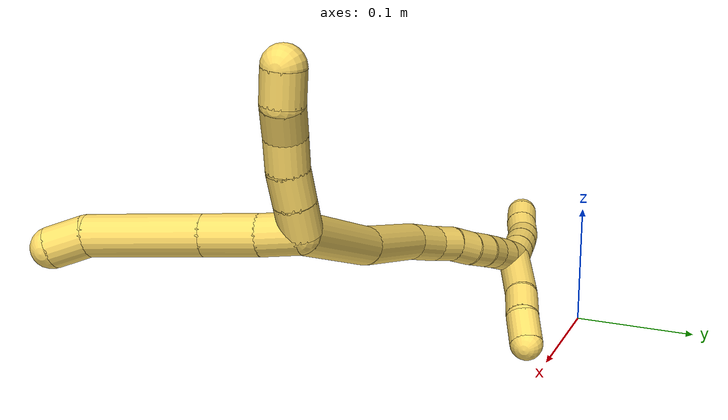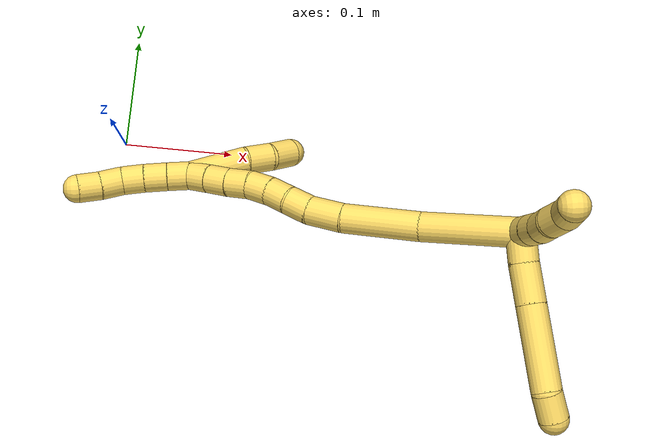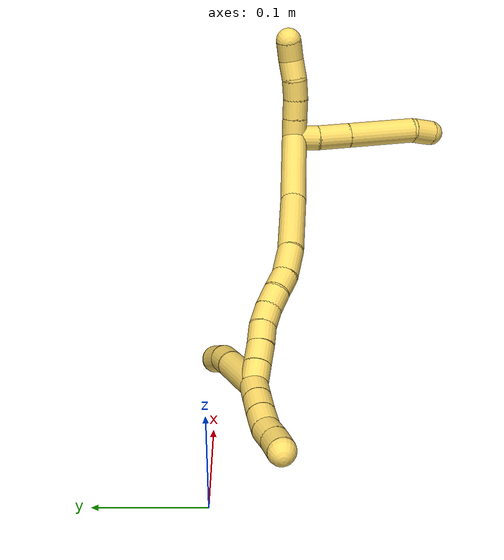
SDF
<sdf version="1.7">
 <world name="default">
  <model name="5">
   <static>0</static>
   <link name="5">
    <collision name="collision-cylinder-e_1_2_8">
     <pose>-0.001555 0.01212 0.000646 -1.51754 -0.127437 0.120842</pose>
     <geometry><cylinder><radius>0.0125</radius><length>0.024472</length></cylinder></geometry>
     <surface>
      <friction><ode><mu>1.16</mu><mu2>1.16</mu2><slip1>0</slip1><slip2>0</slip2></ode></friction>
      <contact><ode><kp>1e+06</kp><kd>1</kd><max_vel>0</max_vel><min_depth>0.001</min_depth></ode></contact>
     </surface>
    </collision>
    <visual name="visual-cylinder-e_1_2_8">
     <pose>-0.001555 0.01212 0.000646 -1.51754 -0.127437 0.120842</pose>
     <geometry><cylinder><radius>0.0125</radius><length>0.024472</length></cylinder></geometry>
     <material><ambient>1 0.858824 0.4 1</ambient></material>
    </visual>
    <collision name="collision-cylinder-e_2_8_9">
     <pose>-0.004101 0.04066 0.003112 -1.4604 -0.059895 0.053626</pose>
     <geometry><cylinder><radius>0.0125</radius><length>0.033102</length></cylinder></geometry>
     <surface>
      <friction><ode><mu>1.16</mu><mu2>1.16</mu2><slip1>0</slip1><slip2>0</slip2></ode></friction>
      <contact><ode><kp>1e+06</kp><kd>1</kd><max_vel>0</max_vel><min_depth>0.001</min_depth></ode></contact>
     </surface>
    </collision>
    <visual name="visual-cylinder-e_2_8_9">
     <pose>-0.004101 0.04066 0.003112 -1.4604 -0.059895 0.053626</pose>
     <geometry><cylinder><radius>0.0125</radius><length>0.033102</length></cylinder></geometry>
     <material><ambient>1 0.858824 0.4 1</ambient></material>
    </visual>
    <collision name="collision-cylinder-e_3_9_10">
     <pose>-0.007196 0.091554 0.008767 -1.46003 -0.060598 0.054235</pose>
     <geometry><cylinder><radius>0.0125</radius><length>0.0695</length></cylinder></geometry>
     <surface>
      <friction><ode><mu>1.16</mu><mu2>1.16</mu2><slip1>0</slip1><slip2>0</slip2></ode></friction>
      <contact><ode><kp>1e+06</kp><kd>1</kd><max_vel>0</max_vel><min_depth>0.001</min_depth></ode></contact>
     </surface>
    </collision>
    <visual name="visual-cylinder-e_3_9_10">
     <pose>-0.007196 0.091554 0.008767 -1.46003 -0.060598 0.054235</pose>
     <geometry><cylinder><radius>0.0125</radius><length>0.0695</length></cylinder></geometry>
     <material><ambient>1 0.858824 0.4 1</ambient></material>
    </visual>
    <collision name="collision-cylinder-e_4_10_6">
     <pose>-0.013057 0.136516 0.015301 -1.31883 -0.333867 0.259764</pose>
     <geometry><cylinder><radius>0.0125</radius><length>0.022926</length></cylinder></geometry>
     <surface>
      <friction><ode><mu>1.16</mu><mu2>1.16</mu2><slip1>0</slip1><slip2>0</slip2></ode></friction>
      <contact><ode><kp>1e+06</kp><kd>1</kd><max_vel>0</max_vel><min_depth>0.001</min_depth></ode></contact>
     </surface>
    </collision>
    <visual name="visual-cylinder-e_4_10_6">
     <pose>-0.013057 0.136516 0.015301 -1.31883 -0.333867 0.259764</pose>
     <geometry><cylinder><radius>0.0125</radius><length>0.022926</length></cylinder></geometry>
     <material><ambient>1 0.858824 0.4 1</ambient></material>
    </visual>
    <collision name="collision-cylinder-e_1_2_11">
     <pose>0.009696 0.000784 0.002317 -0.326402 1.32367 -0.255173</pose>
     <geometry><cylinder><radius>0.0125</radius><length>0.02</length></cylinder></geometry>
     <surface>
      <friction><ode><mu>1.16</mu><mu2>1.16</mu2><slip1>0</slip1><slip2>0</slip2></ode></friction>
      <contact><ode><kp>1e+06</kp><kd>1</kd><max_vel>0</max_vel><min_depth>0.001</min_depth></ode></contact>
     </surface>
    </collision>
    <visual name="visual-cylinder-e_1_2_11">
     <pose>0.009696 0.000784 0.002317 -0.326402 1.32367 -0.255173</pose>
     <geometry><cylinder><radius>0.0125</radius><length>0.02</length></cylinder></geometry>
     <material><ambient>1 0.858824 0.4 1</ambient></material>
    </visual>
    <collision name="collision-cylinder-e_2_11_12">
     <pose>0.029147 0.002496 0.006629 -0.435159 1.34902 -0.349944</pose>
     <geometry><cylinder><radius>0.0125</radius><length>0.02</length></cylinder></geometry>
     <surface>
      <friction><ode><mu>1.16</mu><mu2>1.16</mu2><slip1>0</slip1><slip2>0</slip2></ode></friction>
      <contact><ode><kp>1e+06</kp><kd>1</kd><max_vel>0</max_vel><min_depth>0.001</min_depth></ode></contact>
     </surface>
    </collision>
    <visual name="visual-cylinder-e_2_11_12">
     <pose>0.029147 0.002496 0.006629 -0.435159 1.34902 -0.349944</pose>
     <geometry><cylinder><radius>0.0125</radius><length>0.02</length></cylinder></geometry>
     <material><ambient>1 0.858824 0.4 1</ambient></material>
    </visual>
    <collision name="collision-cylinder-e_3_12_13">
     <pose>0.048803 0.00322 0.010016 0.144836 1.42959 0.125757</pose>
     <geometry><cylinder><radius>0.0125</radius><length>0.02</length></cylinder></geometry>
     <surface>
      <friction><ode><mu>1.16</mu><mu2>1.16</mu2><slip1>0</slip1><slip2>0</slip2></ode></friction>
      <contact><ode><kp>1e+06</kp><kd>1</kd><max_vel>0</max_vel><min_depth>0.001</min_depth></ode></contact>
     </surface>
    </collision>
    <visual name="visual-cylinder-e_3_12_13">
     <pose>0.048803 0.00322 0.010016 0.144836 1.42959 0.125757</pose>
     <geometry><cylinder><radius>0.0125</radius><length>0.02</length></cylinder></geometry>
     <material><ambient>1 0.858824 0.4 1</ambient></material>
    </visual>
    <collision name="collision-cylinder-e_4_13_14">
     <pose>0.067915 0.002003 0.015166 0.263641 1.17103 0.175383</pose>
     <geometry><cylinder><radius>0.0125</radius><length>0.02</length></cylinder></geometry>
     <surface>
      <friction><ode><mu>1.16</mu><mu2>1.16</mu2><slip1>0</slip1><slip2>0</slip2></ode></friction>
      <contact><ode><kp>1e+06</kp><kd>1</kd><max_vel>0</max_vel><min_depth>0.001</min_depth></ode></contact>
     </surface>
    </collision>
    <visual name="visual-cylinder-e_4_13_14">
     <pose>0.067915 0.002003 0.015166 0.263641 1.17103 0.175383</pose>
     <geometry><cylinder><radius>0.0125</radius><length>0.02</length></cylinder></geometry>
     <material><ambient>1 0.858824 0.4 1</ambient></material>
    </visual>
    <collision name="collision-cylinder-e_5_14_5">
     <pose>0.087073 8.2e-05 0.019411 1.07723 1.4677 0.98859</pose>
     <geometry><cylinder><radius>0.0125</radius><length>0.02</length></cylinder></geometry>
     <surface>
      <friction><ode><mu>1.16</mu><mu2>1.16</mu2><slip1>0</slip1><slip2>0</slip2></ode></friction>
      <contact><ode><kp>1e+06</kp><kd>1</kd><max_vel>0</max_vel><min_depth>0.001</min_depth></ode></contact>
     </surface>
    </collision>
    <visual name="visual-cylinder-e_5_14_5">
     <pose>0.087073 8.2e-05 0.019411 1.07723 1.4677 0.98859</pose>
     <geometry><cylinder><radius>0.0125</radius><length>0.02</length></cylinder></geometry>
     <material><ambient>1 0.858824 0.4 1</ambient></material>
    </visual>
    <collision name="collision-cylinder-e_1_2_15">
     <pose>-0.016275 -0.006845 -0.037359 2.96039 -0.404845 -2.30812</pose>
     <geometry><cylinder><radius>0.0125</radius><length>0.082643</length></cylinder></geometry>
     <surface>
      <friction><ode><mu>1.16</mu><mu2>1.16</mu2><slip1>0</slip1><slip2>0</slip2></ode></friction>
      <contact><ode><kp>1e+06</kp><kd>1</kd><max_vel>0</max_vel><min_depth>0.001</min_depth></ode></contact>
     </surface>
    </collision>
    <visual name="visual-cylinder-e_1_2_15">
     <pose>-0.016275 -0.006845 -0.037359 2.96039 -0.404845 -2.30812</pose>
     <geometry><cylinder><radius>0.0125</radius><length>0.082643</length></cylinder></geometry>
     <material><ambient>1 0.858824 0.4 1</ambient></material>
    </visual>
    <collision name="collision-cylinder-e_2_15_16">
     <pose>-0.041424 -0.020183 -0.106017 2.93702 -0.270771 -1.85009</pose>
     <geometry><cylinder><radius>0.0125</radius><length>0.066348</length></cylinder></geometry>
     <surface>
      <friction><ode><mu>1.16</mu><mu2>1.16</mu2><slip1>0</slip1><slip2>0</slip2></ode></friction>
      <contact><ode><kp>1e+06</kp><kd>1</kd><max_vel>0</max_vel><min_depth>0.001</min_depth></ode></contact>
     </surface>
    </collision>
    <visual name="visual-cylinder-e_2_15_16">
     <pose>-0.041424 -0.020183 -0.106017 2.93702 -0.270771 -1.85009</pose>
     <geometry><cylinder><radius>0.0125</radius><length>0.066348</length></cylinder></geometry>
     <material><ambient>1 0.858824 0.4 1</ambient></material>
    </visual>
    <collision name="collision-cylinder-e_3_16_17">
     <pose>-0.05528 -0.031587 -0.150836 2.79321 -0.333453 -1.52614</pose>
     <geometry><cylinder><radius>0.0125</radius><length>0.030446</length></cylinder></geometry>
     <surface>
      <friction><ode><mu>1.16</mu><mu2>1.16</mu2><slip1>0</slip1><slip2>0</slip2></ode></friction>
      <contact><ode><kp>1e+06</kp><kd>1</kd><max_vel>0</max_vel><min_depth>0.001</min_depth></ode></contact>
     </surface>
    </collision>
    <visual name="visual-cylinder-e_3_16_17">
     <pose>-0.05528 -0.031587 -0.150836 2.79321 -0.333453 -1.52614</pose>
     <geometry><cylinder><radius>0.0125</radius><length>0.030446</length></cylinder></geometry>
     <material><ambient>1 0.858824 0.4 1</ambient></material>
    </visual>
    <collision name="collision-cylinder-e_4_17_18">
     <pose>-0.062834 -0.041653 -0.172848 2.59604 -0.25332 -0.854341</pose>
     <geometry><cylinder><radius>0.0125</radius><length>0.020524</length></cylinder></geometry>
     <surface>
      <friction><ode><mu>1.16</mu><mu2>1.16</mu2><slip1>0</slip1><slip2>0</slip2></ode></friction>
      <contact><ode><kp>1e+06</kp><kd>1</kd><max_vel>0</max_vel><min_depth>0.001</min_depth></ode></contact>
     </surface>
    </collision>
    <visual name="visual-cylinder-e_4_17_18">
     <pose>-0.062834 -0.041653 -0.172848 2.59604 -0.25332 -0.854341</pose>
     <geometry><cylinder><radius>0.0125</radius><length>0.020524</length></cylinder></geometry>
     <material><ambient>1 0.858824 0.4 1</ambient></material>
    </visual>
    <collision name="collision-cylinder-e_5_18_19">
     <pose>-0.069338 -0.051884 -0.189021 2.55753 -0.403593 -1.19505</pose>
     <geometry><cylinder><radius>0.0125</radius><length>0.020023</length></cylinder></geometry>
     <surface>
      <friction><ode><mu>1.16</mu><mu2>1.16</mu2><slip1>0</slip1><slip2>0</slip2></ode></friction>
      <contact><ode><kp>1e+06</kp><kd>1</kd><max_vel>0</max_vel><min_depth>0.001</min_depth></ode></contact>
     </surface>
    </collision>
    <visual name="visual-cylinder-e_5_18_19">
     <pose>-0.069338 -0.051884 -0.189021 2.55753 -0.403593 -1.19505</pose>
     <geometry><cylinder><radius>0.0125</radius><length>0.020023</length></cylinder></geometry>
     <material><ambient>1 0.858824 0.4 1</ambient></material>
    </visual>
    <collision name="collision-cylinder-e_6_19_20">
     <pose>-0.076763 -0.060872 -0.205226 2.71146 -0.356588 -1.37955</pose>
     <geometry><cylinder><radius>0.0125</radius><length>0.020014</length></cylinder></geometry>
     <surface>
      <friction><ode><mu>1.16</mu><mu2>1.16</mu2><slip1>0</slip1><slip2>0</slip2></ode></friction>
      <contact><ode><kp>1e+06</kp><kd>1</kd><max_vel>0</max_vel><min_depth>0.001</min_depth></ode></contact>
     </surface>
    </collision>
    <visual name="visual-cylinder-e_6_19_20">
     <pose>-0.076763 -0.060872 -0.205226 2.71146 -0.356588 -1.37955</pose>
     <geometry><cylinder><radius>0.0125</radius><length>0.020014</length></cylinder></geometry>
     <material><ambient>1 0.858824 0.4 1</ambient></material>
    </visual>
    <collision name="collision-cylinder-e_7_20_21">
     <pose>-0.083986 -0.066999 -0.222759 2.90034 -0.382264 -2.02229</pose>
     <geometry><cylinder><radius>0.0125</radius><length>0.02</length></cylinder></geometry>
     <surface>
      <friction><ode><mu>1.16</mu><mu2>1.16</mu2><slip1>0</slip1><slip2>0</slip2></ode></friction>
      <contact><ode><kp>1e+06</kp><kd>1</kd><max_vel>0</max_vel><min_depth>0.001</min_depth></ode></contact>
     </surface>
    </collision>
    <visual name="visual-cylinder-e_7_20_21">
     <pose>-0.083986 -0.066999 -0.222759 2.90034 -0.382264 -2.02229</pose>
     <geometry><cylinder><radius>0.0125</radius><length>0.02</length></cylinder></geometry>
     <material><ambient>1 0.858824 0.4 1</ambient></material>
    </visual>
    <collision name="collision-cylinder-e_8_21_22">
     <pose>-0.091634 -0.072063 -0.240518 2.82694 -0.402487 -1.8197</pose>
     <geometry><cylinder><radius>0.0125</radius><length>0.02</length></cylinder></geometry>
     <surface>
      <friction><ode><mu>1.16</mu><mu2>1.16</mu2><slip1>0</slip1><slip2>0</slip2></ode></friction>
      <contact><ode><kp>1e+06</kp><kd>1</kd><max_vel>0</max_vel><min_depth>0.001</min_depth></ode></contact>
     </surface>
    </collision>
    <visual name="visual-cylinder-e_8_21_22">
     <pose>-0.091634 -0.072063 -0.240518 2.82694 -0.402487 -1.8197</pose>
     <geometry><cylinder><radius>0.0125</radius><length>0.02</length></cylinder></geometry>
     <material><ambient>1 0.858824 0.4 1</ambient></material>
    </visual>
    <collision name="collision-cylinder-e_9_22_1">
     <pose>-0.099805 -0.077688 -0.257882 2.8297 -0.439386 -1.91466</pose>
     <geometry><cylinder><radius>0.0125</radius><length>0.020002</length></cylinder></geometry>
     <surface>
      <friction><ode><mu>1.16</mu><mu2>1.16</mu2><slip1>0</slip1><slip2>0</slip2></ode></friction>
      <contact><ode><kp>1e+06</kp><kd>1</kd><max_vel>0</max_vel><min_depth>0.001</min_depth></ode></contact>
     </surface>
    </collision>
    <visual name="visual-cylinder-e_9_22_1">
     <pose>-0.099805 -0.077688 -0.257882 2.8297 -0.439386 -1.91466</pose>
     <geometry><cylinder><radius>0.0125</radius><length>0.020002</length></cylinder></geometry>
     <material><ambient>1 0.858824 0.4 1</ambient></material>
    </visual>
    <collision name="collision-cylinder-e_1_1_23">
     <pose>-0.103972 -0.080331 -0.276495 -3.12808 0.008727 -1.14695</pose>
     <geometry><cylinder><radius>0.0125</radius><length>0.02</length></cylinder></geometry>
     <surface>
      <friction><ode><mu>1.16</mu><mu2>1.16</mu2><slip1>0</slip1><slip2>0</slip2></ode></friction>
      <contact><ode><kp>1e+06</kp><kd>1</kd><max_vel>0</max_vel><min_depth>0.001</min_depth></ode></contact>
     </surface>
    </collision>
    <visual name="visual-cylinder-e_1_1_23">
     <pose>-0.103972 -0.080331 -0.276495 -3.12808 0.008727 -1.14695</pose>
     <geometry><cylinder><radius>0.0125</radius><length>0.02</length></cylinder></geometry>
     <material><ambient>1 0.858824 0.4 1</ambient></material>
    </visual>
    <collision name="collision-cylinder-e_2_23_24">
     <pose>-0.104182 -0.079948 -0.296486 -3.11678 -0.029655 1.748</pose>
     <geometry><cylinder><radius>0.0125</radius><length>0.02</length></cylinder></geometry>
     <surface>
      <friction><ode><mu>1.16</mu><mu2>1.16</mu2><slip1>0</slip1><slip2>0</slip2></ode></friction>
      <contact><ode><kp>1e+06</kp><kd>1</kd><max_vel>0</max_vel><min_depth>0.001</min_depth></ode></contact>
     </surface>
    </collision>
    <visual name="visual-cylinder-e_2_23_24">
     <pose>-0.104182 -0.079948 -0.296486 -3.11678 -0.029655 1.748</pose>
     <geometry><cylinder><radius>0.0125</radius><length>0.02</length></cylinder></geometry>
     <material><ambient>1 0.858824 0.4 1</ambient></material>
    </visual>
    <collision name="collision-cylinder-e_3_24_25">
     <pose>-0.104987 -0.079041 -0.316444 -3.07562 -0.050904 1.31422</pose>
     <geometry><cylinder><radius>0.0125</radius><length>0.02</length></cylinder></geometry>
     <surface>
      <friction><ode><mu>1.16</mu><mu2>1.16</mu2><slip1>0</slip1><slip2>0</slip2></ode></friction>
      <contact><ode><kp>1e+06</kp><kd>1</kd><max_vel>0</max_vel><min_depth>0.001</min_depth></ode></contact>
     </surface>
    </collision>
    <visual name="visual-cylinder-e_3_24_25">
     <pose>-0.104987 -0.079041 -0.316444 -3.07562 -0.050904 1.31422</pose>
     <geometry><cylinder><radius>0.0125</radius><length>0.02</length></cylinder></geometry>
     <material><ambient>1 0.858824 0.4 1</ambient></material>
    </visual>
    <collision name="collision-cylinder-e_4_25_26">
     <pose>-0.103689 -0.076109 -0.335978 -2.90836 0.181654 -1.32167</pose>
     <geometry><cylinder><radius>0.0125</radius><length>0.02</length></cylinder></geometry>
     <surface>
      <friction><ode><mu>1.16</mu><mu2>1.16</mu2><slip1>0</slip1><slip2>0</slip2></ode></friction>
      <contact><ode><kp>1e+06</kp><kd>1</kd><max_vel>0</max_vel><min_depth>0.001</min_depth></ode></contact>
     </surface>
    </collision>
    <visual name="visual-cylinder-e_4_25_26">
     <pose>-0.103689 -0.076109 -0.335978 -2.90836 0.181654 -1.32167</pose>
     <geometry><cylinder><radius>0.0125</radius><length>0.02</length></cylinder></geometry>
     <material><ambient>1 0.858824 0.4 1</ambient></material>
    </visual>
    <collision name="collision-cylinder-e_5_26_4">
     <pose>-0.099796 -0.072423 -0.355225 -2.99656 0.210163 -1.93529</pose>
     <geometry><cylinder><radius>0.0125</radius><length>0.02</length></cylinder></geometry>
     <surface>
      <friction><ode><mu>1.16</mu><mu2>1.16</mu2><slip1>0</slip1><slip2>0</slip2></ode></friction>
      <contact><ode><kp>1e+06</kp><kd>1</kd><max_vel>0</max_vel><min_depth>0.001</min_depth></ode></contact>
     </surface>
    </collision>
    <visual name="visual-cylinder-e_5_26_4">
     <pose>-0.099796 -0.072423 -0.355225 -2.99656 0.210163 -1.93529</pose>
     <geometry><cylinder><radius>0.0125</radius><length>0.02</length></cylinder></geometry>
     <material><ambient>1 0.858824 0.4 1</ambient></material>
    </visual>
    <collision name="collision-cylinder-e_1_1_27">
     <pose>-0.10965 -0.08765 -0.242014 0.285444 -0.215701 -0.031114</pose>
     <geometry><cylinder><radius>0.0125</radius><length>0.052239</length></cylinder></geometry>
     <surface>
      <friction><ode><mu>1.16</mu><mu2>1.16</mu2><slip1>0</slip1><slip2>0</slip2></ode></friction>
      <contact><ode><kp>1e+06</kp><kd>1</kd><max_vel>0</max_vel><min_depth>0.001</min_depth></ode></contact>
     </surface>
    </collision>
    <visual name="visual-cylinder-e_1_1_27">
     <pose>-0.10965 -0.08765 -0.242014 0.285444 -0.215701 -0.031114</pose>
     <geometry><cylinder><radius>0.0125</radius><length>0.052239</length></cylinder></geometry>
     <material><ambient>1 0.858824 0.4 1</ambient></material>
    </visual>
    <collision name="collision-cylinder-e_2_27_28">
     <pose>-0.119365 -0.097148 -0.206589 0.208306 -0.353306 -0.037316</pose>
     <geometry><cylinder><radius>0.0125</radius><length>0.023843</length></cylinder></geometry>
     <surface>
      <friction><ode><mu>1.16</mu><mu2>1.16</mu2><slip1>0</slip1><slip2>0</slip2></ode></friction>
      <contact><ode><kp>1e+06</kp><kd>1</kd><max_vel>0</max_vel><min_depth>0.001</min_depth></ode></contact>
     </surface>
    </collision>
    <visual name="visual-cylinder-e_2_27_28">
     <pose>-0.119365 -0.097148 -0.206589 0.208306 -0.353306 -0.037316</pose>
     <geometry><cylinder><radius>0.0125</radius><length>0.023843</length></cylinder></geometry>
     <material><ambient>1 0.858824 0.4 1</ambient></material>
    </visual>
    <collision name="collision-cylinder-e_3_28_3">
     <pose>-0.13009 -0.102689 -0.186209 0.329597 -0.584624 -0.100011</pose>
     <geometry><cylinder><radius>0.0125</radius><length>0.023917</length></cylinder></geometry>
     <surface>
      <friction><ode><mu>1.16</mu><mu2>1.16</mu2><slip1>0</slip1><slip2>0</slip2></ode></friction>
      <contact><ode><kp>1e+06</kp><kd>1</kd><max_vel>0</max_vel><min_depth>0.001</min_depth></ode></contact>
     </surface>
    </collision>
    <visual name="visual-cylinder-e_3_28_3">
     <pose>-0.13009 -0.102689 -0.186209 0.329597 -0.584624 -0.100011</pose>
     <geometry><cylinder><radius>0.0125</radius><length>0.023917</length></cylinder></geometry>
     <material><ambient>1 0.858824 0.4 1</ambient></material>
    </visual>
    <collision name="collision-sphere-3">
     <pose>-0.13669 -0.105916 -0.176774 0 -0 0</pose>
     <geometry><sphere><radius>0.0125</radius></sphere></geometry>
     <surface>
      <friction><ode><mu>1.16</mu><mu2>1.16</mu2><slip1>0</slip1><slip2>0</slip2></ode></friction>
      <contact><ode><kp>1e+06</kp><kd>1</kd><max_vel>0</max_vel><min_depth>0.001</min_depth></ode></contact>
     </surface>
    </collision>
    <visual name="visual-sphere-3">
     <pose>-0.13669 -0.105916 -0.176774 0 -0 0</pose>
     <geometry><sphere><radius>0.0125</radius></sphere></geometry>
     <material><ambient>1 0.858824 0.4 1</ambient></material>
    </visual>
    <collision name="collision-sphere-28">
     <pose>-0.12349 -0.099461 -0.195645 0 -0 0</pose>
     <geometry><sphere><radius>0.0125</radius></sphere></geometry>
     <surface>
      <friction><ode><mu>1.16</mu><mu2>1.16</mu2><slip1>0</slip1><slip2>0</slip2></ode></friction>
      <contact><ode><kp>1e+06</kp><kd>1</kd><max_vel>0</max_vel><min_depth>0.001</min_depth></ode></contact>
     </surface>
    </collision>
    <visual name="visual-sphere-28">
     <pose>-0.12349 -0.099461 -0.195645 0 -0 0</pose>
     <geometry><sphere><radius>0.0125</radius></sphere></geometry>
     <material><ambient>1 0.858824 0.4 1</ambient></material>
    </visual>
    <collision name="collision-sphere-27">
     <pose>-0.115241 -0.094835 -0.217532 0 -0 0</pose>
     <geometry><sphere><radius>0.0125</radius></sphere></geometry>
     <surface>
      <friction><ode><mu>1.16</mu><mu2>1.16</mu2><slip1>0</slip1><slip2>0</slip2></ode></friction>
      <contact><ode><kp>1e+06</kp><kd>1</kd><max_vel>0</max_vel><min_depth>0.001</min_depth></ode></contact>
     </surface>
    </collision>
    <visual name="visual-sphere-27">
     <pose>-0.115241 -0.094835 -0.217532 0 -0 0</pose>
     <geometry><sphere><radius>0.0125</radius></sphere></geometry>
     <material><ambient>1 0.858824 0.4 1</ambient></material>
    </visual>
    <collision name="collision-sphere-4">
     <pose>-0.09771 -0.071009 -0.364902 0 -0 0</pose>
     <geometry><sphere><radius>0.0125</radius></sphere></geometry>
     <surface>
      <friction><ode><mu>1.16</mu><mu2>1.16</mu2><slip1>0</slip1><slip2>0</slip2></ode></friction>
      <contact><ode><kp>1e+06</kp><kd>1</kd><max_vel>0</max_vel><min_depth>0.001</min_depth></ode></contact>
     </surface>
    </collision>
    <visual name="visual-sphere-4">
     <pose>-0.09771 -0.071009 -0.364902 0 -0 0</pose>
     <geometry><sphere><radius>0.0125</radius></sphere></geometry>
     <material><ambient>1 0.858824 0.4 1</ambient></material>
    </visual>
    <collision name="collision-sphere-26">
     <pose>-0.101883 -0.073836 -0.345548 0 -0 0</pose>
     <geometry><sphere><radius>0.0125</radius></sphere></geometry>
     <surface>
      <friction><ode><mu>1.16</mu><mu2>1.16</mu2><slip1>0</slip1><slip2>0</slip2></ode></friction>
      <contact><ode><kp>1e+06</kp><kd>1</kd><max_vel>0</max_vel><min_depth>0.001</min_depth></ode></contact>
     </surface>
    </collision>
    <visual name="visual-sphere-26">
     <pose>-0.101883 -0.073836 -0.345548 0 -0 0</pose>
     <geometry><sphere><radius>0.0125</radius></sphere></geometry>
     <material><ambient>1 0.858824 0.4 1</ambient></material>
    </visual>
    <collision name="collision-sphere-25">
     <pose>-0.105496 -0.078383 -0.326409 0 -0 0</pose>
     <geometry><sphere><radius>0.0125</radius></sphere></geometry>
     <surface>
      <friction><ode><mu>1.16</mu><mu2>1.16</mu2><slip1>0</slip1><slip2>0</slip2></ode></friction>
      <contact><ode><kp>1e+06</kp><kd>1</kd><max_vel>0</max_vel><min_depth>0.001</min_depth></ode></contact>
     </surface>
    </collision>
    <visual name="visual-sphere-25">
     <pose>-0.105496 -0.078383 -0.326409 0 -0 0</pose>
     <geometry><sphere><radius>0.0125</radius></sphere></geometry>
     <material><ambient>1 0.858824 0.4 1</ambient></material>
    </visual>
    <collision name="collision-sphere-24">
     <pose>-0.104478 -0.0797 -0.306479 0 -0 0</pose>
     <geometry><sphere><radius>0.0125</radius></sphere></geometry>
     <surface>
      <friction><ode><mu>1.16</mu><mu2>1.16</mu2><slip1>0</slip1><slip2>0</slip2></ode></friction>
      <contact><ode><kp>1e+06</kp><kd>1</kd><max_vel>0</max_vel><min_depth>0.001</min_depth></ode></contact>
     </surface>
    </collision>
    <visual name="visual-sphere-24">
     <pose>-0.104478 -0.0797 -0.306479 0 -0 0</pose>
     <geometry><sphere><radius>0.0125</radius></sphere></geometry>
     <material><ambient>1 0.858824 0.4 1</ambient></material>
    </visual>
    <collision name="collision-sphere-23">
     <pose>-0.103885 -0.080196 -0.286494 0 -0 0</pose>
     <geometry><sphere><radius>0.0125</radius></sphere></geometry>
     <surface>
      <friction><ode><mu>1.16</mu><mu2>1.16</mu2><slip1>0</slip1><slip2>0</slip2></ode></friction>
      <contact><ode><kp>1e+06</kp><kd>1</kd><max_vel>0</max_vel><min_depth>0.001</min_depth></ode></contact>
     </surface>
    </collision>
    <visual name="visual-sphere-23">
     <pose>-0.103885 -0.080196 -0.286494 0 -0 0</pose>
     <geometry><sphere><radius>0.0125</radius></sphere></geometry>
     <material><ambient>1 0.858824 0.4 1</ambient></material>
    </visual>
    <collision name="collision-sphere-1">
     <pose>-0.10406 -0.080466 -0.266496 0 -0 0</pose>
     <geometry><sphere><radius>0.0125</radius></sphere></geometry>
     <surface>
      <friction><ode><mu>1.16</mu><mu2>1.16</mu2><slip1>0</slip1><slip2>0</slip2></ode></friction>
      <contact><ode><kp>1e+06</kp><kd>1</kd><max_vel>0</max_vel><min_depth>0.001</min_depth></ode></contact>
     </surface>
    </collision>
    <visual name="visual-sphere-1">
     <pose>-0.10406 -0.080466 -0.266496 0 -0 0</pose>
     <geometry><sphere><radius>0.0125</radius></sphere></geometry>
     <material><ambient>1 0.858824 0.4 1</ambient></material>
    </visual>
    <collision name="collision-sphere-22">
     <pose>-0.095551 -0.074911 -0.249267 0 -0 0</pose>
     <geometry><sphere><radius>0.0125</radius></sphere></geometry>
     <surface>
      <friction><ode><mu>1.16</mu><mu2>1.16</mu2><slip1>0</slip1><slip2>0</slip2></ode></friction>
      <contact><ode><kp>1e+06</kp><kd>1</kd><max_vel>0</max_vel><min_depth>0.001</min_depth></ode></contact>
     </surface>
    </collision>
    <visual name="visual-sphere-22">
     <pose>-0.095551 -0.074911 -0.249267 0 -0 0</pose>
     <geometry><sphere><radius>0.0125</radius></sphere></geometry>
     <material><ambient>1 0.858824 0.4 1</ambient></material>
    </visual>
    <collision name="collision-sphere-21">
     <pose>-0.087717 -0.069216 -0.231768 0 -0 0</pose>
     <geometry><sphere><radius>0.0125</radius></sphere></geometry>
     <surface>
      <friction><ode><mu>1.16</mu><mu2>1.16</mu2><slip1>0</slip1><slip2>0</slip2></ode></friction>
      <contact><ode><kp>1e+06</kp><kd>1</kd><max_vel>0</max_vel><min_depth>0.001</min_depth></ode></contact>
     </surface>
    </collision>
    <visual name="visual-sphere-21">
     <pose>-0.087717 -0.069216 -0.231768 0 -0 0</pose>
     <geometry><sphere><radius>0.0125</radius></sphere></geometry>
     <material><ambient>1 0.858824 0.4 1</ambient></material>
    </visual>
    <collision name="collision-sphere-11">
     <pose>0.019392 0.001569 0.004634 0 -0 0</pose>
     <geometry><sphere><radius>0.0125</radius></sphere></geometry>
     <surface>
      <friction><ode><mu>1.16</mu><mu2>1.16</mu2><slip1>0</slip1><slip2>0</slip2></ode></friction>
      <contact><ode><kp>1e+06</kp><kd>1</kd><max_vel>0</max_vel><min_depth>0.001</min_depth></ode></contact>
     </surface>
    </collision>
    <visual name="visual-sphere-11">
     <pose>0.019392 0.001569 0.004634 0 -0 0</pose>
     <geometry><sphere><radius>0.0125</radius></sphere></geometry>
     <material><ambient>1 0.858824 0.4 1</ambient></material>
    </visual>
    <collision name="collision-sphere-6">
     <pose>-0.016813 0.147004 0.018001 0 -0 0</pose>
     <geometry><sphere><radius>0.0125</radius></sphere></geometry>
     <surface>
      <friction><ode><mu>1.16</mu><mu2>1.16</mu2><slip1>0</slip1><slip2>0</slip2></ode></friction>
      <contact><ode><kp>1e+06</kp><kd>1</kd><max_vel>0</max_vel><min_depth>0.001</min_depth></ode></contact>
     </surface>
    </collision>
    <visual name="visual-sphere-6">
     <pose>-0.016813 0.147004 0.018001 0 -0 0</pose>
     <geometry><sphere><radius>0.0125</radius></sphere></geometry>
     <material><ambient>1 0.858824 0.4 1</ambient></material>
    </visual>
    <collision name="collision-sphere-10">
     <pose>-0.009301 0.126028 0.012601 0 -0 0</pose>
     <geometry><sphere><radius>0.0125</radius></sphere></geometry>
     <surface>
      <friction><ode><mu>1.16</mu><mu2>1.16</mu2><slip1>0</slip1><slip2>0</slip2></ode></friction>
      <contact><ode><kp>1e+06</kp><kd>1</kd><max_vel>0</max_vel><min_depth>0.001</min_depth></ode></contact>
     </surface>
    </collision>
    <visual name="visual-sphere-10">
     <pose>-0.009301 0.126028 0.012601 0 -0 0</pose>
     <geometry><sphere><radius>0.0125</radius></sphere></geometry>
     <material><ambient>1 0.858824 0.4 1</ambient></material>
    </visual>
    <collision name="collision-sphere-9">
     <pose>-0.005092 0.057081 0.004932 0 -0 0</pose>
     <geometry><sphere><radius>0.0125</radius></sphere></geometry>
     <surface>
      <friction><ode><mu>1.16</mu><mu2>1.16</mu2><slip1>0</slip1><slip2>0</slip2></ode></friction>
      <contact><ode><kp>1e+06</kp><kd>1</kd><max_vel>0</max_vel><min_depth>0.001</min_depth></ode></contact>
     </surface>
    </collision>
    <visual name="visual-sphere-9">
     <pose>-0.005092 0.057081 0.004932 0 -0 0</pose>
     <geometry><sphere><radius>0.0125</radius></sphere></geometry>
     <material><ambient>1 0.858824 0.4 1</ambient></material>
    </visual>
    <collision name="collision-sphere-2">
     <geometry><sphere><radius>0.0125</radius></sphere></geometry>
     <surface>
      <friction><ode><mu>1.16</mu><mu2>1.16</mu2><slip1>0</slip1><slip2>0</slip2></ode></friction>
      <contact><ode><kp>1e+06</kp><kd>1</kd><max_vel>0</max_vel><min_depth>0.001</min_depth></ode></contact>
     </surface>
    </collision>
    <visual name="visual-sphere-2">
     <geometry><sphere><radius>0.0125</radius></sphere></geometry>
     <material><ambient>1 0.858824 0.4 1</ambient></material>
    </visual>
    <collision name="collision-sphere-19">
     <pose>-0.073269 -0.056961 -0.196702 0 -0 0</pose>
     <geometry><sphere><radius>0.0125</radius></sphere></geometry>
     <surface>
      <friction><ode><mu>1.16</mu><mu2>1.16</mu2><slip1>0</slip1><slip2>0</slip2></ode></friction>
      <contact><ode><kp>1e+06</kp><kd>1</kd><max_vel>0</max_vel><min_depth>0.001</min_depth></ode></contact>
     </surface>
    </collision>
    <visual name="visual-sphere-19">
     <pose>-0.073269 -0.056961 -0.196702 0 -0 0</pose>
     <geometry><sphere><radius>0.0125</radius></sphere></geometry>
     <material><ambient>1 0.858824 0.4 1</ambient></material>
    </visual>
    <collision name="collision-sphere-8">
     <pose>-0.00311 0.02424 0.001292 0 -0 0</pose>
     <geometry><sphere><radius>0.0125</radius></sphere></geometry>
     <surface>
      <friction><ode><mu>1.16</mu><mu2>1.16</mu2><slip1>0</slip1><slip2>0</slip2></ode></friction>
      <contact><ode><kp>1e+06</kp><kd>1</kd><max_vel>0</max_vel><min_depth>0.001</min_depth></ode></contact>
     </surface>
    </collision>
    <visual name="visual-sphere-8">
     <pose>-0.00311 0.02424 0.001292 0 -0 0</pose>
     <geometry><sphere><radius>0.0125</radius></sphere></geometry>
     <material><ambient>1 0.858824 0.4 1</ambient></material>
    </visual>
    <collision name="collision-sphere-12">
     <pose>0.038903 0.003423 0.008623 0 -0 0</pose>
     <geometry><sphere><radius>0.0125</radius></sphere></geometry>
     <surface>
      <friction><ode><mu>1.16</mu><mu2>1.16</mu2><slip1>0</slip1><slip2>0</slip2></ode></friction>
      <contact><ode><kp>1e+06</kp><kd>1</kd><max_vel>0</max_vel><min_depth>0.001</min_depth></ode></contact>
     </surface>
    </collision>
    <visual name="visual-sphere-12">
     <pose>0.038903 0.003423 0.008623 0 -0 0</pose>
     <geometry><sphere><radius>0.0125</radius></sphere></geometry>
     <material><ambient>1 0.858824 0.4 1</ambient></material>
    </visual>
    <collision name="collision-sphere-13">
     <pose>0.058703 0.003017 0.011409 0 -0 0</pose>
     <geometry><sphere><radius>0.0125</radius></sphere></geometry>
     <surface>
      <friction><ode><mu>1.16</mu><mu2>1.16</mu2><slip1>0</slip1><slip2>0</slip2></ode></friction>
      <contact><ode><kp>1e+06</kp><kd>1</kd><max_vel>0</max_vel><min_depth>0.001</min_depth></ode></contact>
     </surface>
    </collision>
    <visual name="visual-sphere-13">
     <pose>0.058703 0.003017 0.011409 0 -0 0</pose>
     <geometry><sphere><radius>0.0125</radius></sphere></geometry>
     <material><ambient>1 0.858824 0.4 1</ambient></material>
    </visual>
    <collision name="collision-sphere-14">
     <pose>0.077127 0.000988 0.018924 0 -0 0</pose>
     <geometry><sphere><radius>0.0125</radius></sphere></geometry>
     <surface>
      <friction><ode><mu>1.16</mu><mu2>1.16</mu2><slip1>0</slip1><slip2>0</slip2></ode></friction>
      <contact><ode><kp>1e+06</kp><kd>1</kd><max_vel>0</max_vel><min_depth>0.001</min_depth></ode></contact>
     </surface>
    </collision>
    <visual name="visual-sphere-14">
     <pose>0.077127 0.000988 0.018924 0 -0 0</pose>
     <geometry><sphere><radius>0.0125</radius></sphere></geometry>
     <material><ambient>1 0.858824 0.4 1</ambient></material>
    </visual>
    <collision name="collision-sphere-5">
     <pose>0.09702 -0.000824 0.019899 0 -0 0</pose>
     <geometry><sphere><radius>0.0125</radius></sphere></geometry>
     <surface>
      <friction><ode><mu>1.16</mu><mu2>1.16</mu2><slip1>0</slip1><slip2>0</slip2></ode></friction>
      <contact><ode><kp>1e+06</kp><kd>1</kd><max_vel>0</max_vel><min_depth>0.001</min_depth></ode></contact>
     </surface>
    </collision>
    <visual name="visual-sphere-5">
     <pose>0.09702 -0.000824 0.019899 0 -0 0</pose>
     <geometry><sphere><radius>0.0125</radius></sphere></geometry>
     <material><ambient>1 0.858824 0.4 1</ambient></material>
    </visual>
    <collision name="collision-sphere-15">
     <pose>-0.032551 -0.013689 -0.074718 0 -0 0</pose>
     <geometry><sphere><radius>0.0125</radius></sphere></geometry>
     <surface>
      <friction><ode><mu>1.16</mu><mu2>1.16</mu2><slip1>0</slip1><slip2>0</slip2></ode></friction>
      <contact><ode><kp>1e+06</kp><kd>1</kd><max_vel>0</max_vel><min_depth>0.001</min_depth></ode></contact>
     </surface>
    </collision>
    <visual name="visual-sphere-15">
     <pose>-0.032551 -0.013689 -0.074718 0 -0 0</pose>
     <geometry><sphere><radius>0.0125</radius></sphere></geometry>
     <material><ambient>1 0.858824 0.4 1</ambient></material>
    </visual>
    <collision name="collision-sphere-16">
     <pose>-0.050297 -0.026677 -0.137316 0 -0 0</pose>
     <geometry><sphere><radius>0.0125</radius></sphere></geometry>
     <surface>
      <friction><ode><mu>1.16</mu><mu2>1.16</mu2><slip1>0</slip1><slip2>0</slip2></ode></friction>
      <contact><ode><kp>1e+06</kp><kd>1</kd><max_vel>0</max_vel><min_depth>0.001</min_depth></ode></contact>
     </surface>
    </collision>
    <visual name="visual-sphere-16">
     <pose>-0.050297 -0.026677 -0.137316 0 -0 0</pose>
     <geometry><sphere><radius>0.0125</radius></sphere></geometry>
     <material><ambient>1 0.858824 0.4 1</ambient></material>
    </visual>
    <collision name="collision-sphere-17">
     <pose>-0.060262 -0.036498 -0.164356 0 -0 0</pose>
     <geometry><sphere><radius>0.0125</radius></sphere></geometry>
     <surface>
      <friction><ode><mu>1.16</mu><mu2>1.16</mu2><slip1>0</slip1><slip2>0</slip2></ode></friction>
      <contact><ode><kp>1e+06</kp><kd>1</kd><max_vel>0</max_vel><min_depth>0.001</min_depth></ode></contact>
     </surface>
    </collision>
    <visual name="visual-sphere-17">
     <pose>-0.060262 -0.036498 -0.164356 0 -0 0</pose>
     <geometry><sphere><radius>0.0125</radius></sphere></geometry>
     <material><ambient>1 0.858824 0.4 1</ambient></material>
    </visual>
    <collision name="collision-sphere-18">
     <pose>-0.065406 -0.046807 -0.181341 0 -0 0</pose>
     <geometry><sphere><radius>0.0125</radius></sphere></geometry>
     <surface>
      <friction><ode><mu>1.16</mu><mu2>1.16</mu2><slip1>0</slip1><slip2>0</slip2></ode></friction>
      <contact><ode><kp>1e+06</kp><kd>1</kd><max_vel>0</max_vel><min_depth>0.001</min_depth></ode></contact>
     </surface>
    </collision>
    <visual name="visual-sphere-18">
     <pose>-0.065406 -0.046807 -0.181341 0 -0 0</pose>
     <geometry><sphere><radius>0.0125</radius></sphere></geometry>
     <material><ambient>1 0.858824 0.4 1</ambient></material>
    </visual>
    <collision name="collision-sphere-20">
     <pose>-0.080256 -0.064782 -0.213749 0 -0 0</pose>
     <geometry><sphere><radius>0.0125</radius></sphere></geometry>
     <surface>
      <friction><ode><mu>1.16</mu><mu2>1.16</mu2><slip1>0</slip1><slip2>0</slip2></ode></friction>
      <contact><ode><kp>1e+06</kp><kd>1</kd><max_vel>0</max_vel><min_depth>0.001</min_depth></ode></contact>
     </surface>
    </collision>
    <visual name="visual-sphere-20">
     <pose>-0.080256 -0.064782 -0.213749 0 -0 0</pose>
     <geometry><sphere><radius>0.0125</radius></sphere></geometry>
     <material><ambient>1 0.858824 0.4 1</ambient></material>
    </visual>
    <inertial>
     <pose>-0.044851 -0.021487 -0.12275 0 -0 0</pose>
     <mass>0.75</mass>
     <inertia><ixx>-5.3e-05</ixx><ixy>0</ixy><ixz>0</ixz><iyy>9e-06</iyy><iyz>0</iyz><izz>-3e-06</izz></inertia>
    </inertial>
   </link>
   <pose>0.349922 -0.076627 0.173255 2.48905 -1.53676 0.797531</pose>
  </model>
 </world>
</sdf>
